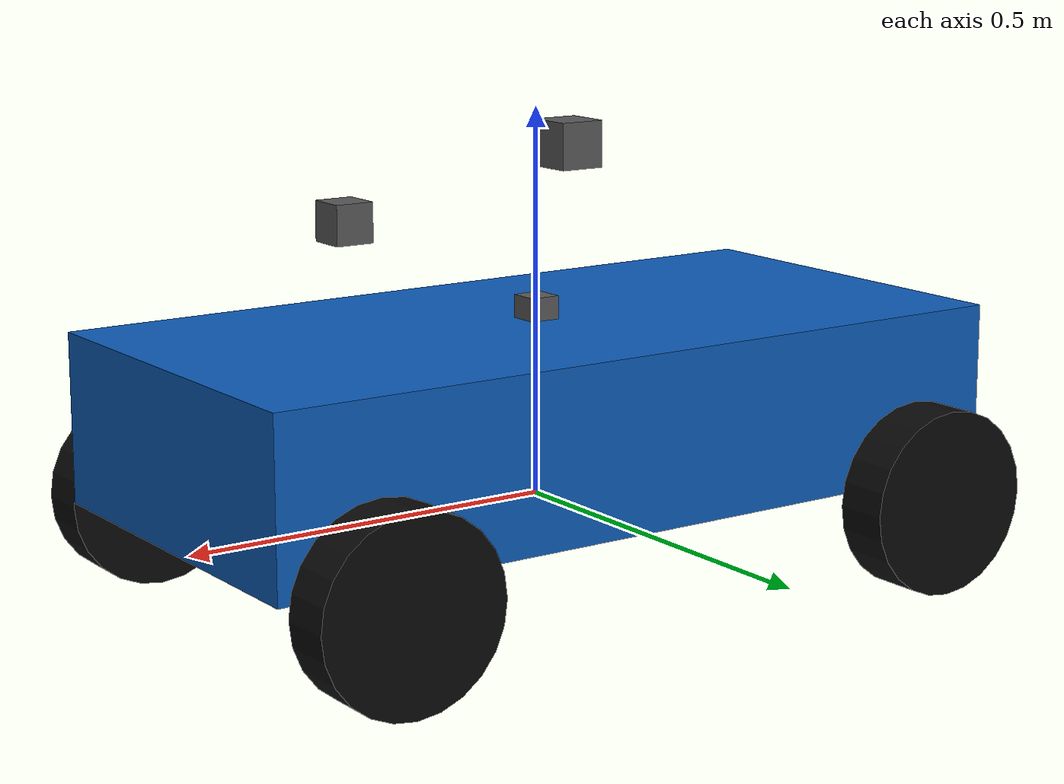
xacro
<?xml version="1.0"?>
<!-- Модель Ackermann-робота: SI, оси REP-103. Размеры взяты из
     models/course_ackermann/model.sdf (только геометрия, без Gazebo-плагинов). -->
<robot name="course_ackermann" xmlns:xacro="http://www.ros.org/wiki/xacro">

  <!-- База и колёса: метры, килограммы. -->
  <xacro:property name="base_length" value="1.05"/>
  <xacro:property name="base_width" value="0.52"/>
  <xacro:property name="base_height" value="0.22"/>
  <xacro:property name="base_clearance" value="0.12"/>
  <xacro:property name="track" value="0.62"/>
  <xacro:property name="wheelbase" value="0.80"/>
  <xacro:property name="wheel_radius" value="0.12"/>
  <xacro:property name="wheel_width" value="0.07"/>

  <!-- Сенсоры: смещения от base_link, метры. -->
  <xacro:property name="camera_xyz" value="0.28 0.0 0.38"/>
  <xacro:property name="lidar_xyz" value="-0.05 0.0 0.45"/>
  <xacro:property name="imu_xyz" value="0.0 0.0 0.24"/>

  <!-- Массы: килограммы. -->
  <xacro:property name="base_mass" value="12.0"/>
  <xacro:property name="wheel_mass" value="0.8"/>
  <xacro:property name="sensor_mass" value="0.0333"/>

  <xacro:macro name="box_inertial" params="mass x y z">
    <inertial>
      <mass value="${mass}"/>
      <inertia ixx="${mass * (y * y + z * z) / 12.0}" ixy="0.0" ixz="0.0"
               iyy="${mass * (x * x + z * z) / 12.0}" iyz="0.0"
               izz="${mass * (x * x + y * y) / 12.0}"/>
    </inertial>
  </xacro:macro>

  <link name="base_link">
    <xacro:box_inertial mass="${base_mass}" x="${base_length}"
                        y="${base_width}" z="${base_height}"/>
    <visual>
      <origin xyz="0 0 ${base_clearance}" rpy="0 0 0"/>
      <geometry>
        <box size="${base_length} ${base_width} ${base_height}"/>
      </geometry>
      <material name="body_blue">
        <color rgba="0.05 0.36 0.72 1.0"/>
      </material>
    </visual>
    <collision>
      <origin xyz="0 0 ${base_clearance}" rpy="0 0 0"/>
      <geometry>
        <box size="${base_length} ${base_width} ${base_height}"/>
      </geometry>
    </collision>
  </link>

  <xacro:macro name="wheel" params="name x y">
    <link name="${name}">
      <inertial>
        <mass value="${wheel_mass}"/>
        <inertia ixx="${wheel_mass * (3 * wheel_radius * wheel_radius + wheel_width * wheel_width) / 12.0}"
                 ixy="0.0" ixz="0.0"
                 iyy="${wheel_mass * wheel_radius * wheel_radius / 2.0}" iyz="0.0"
                 izz="${wheel_mass * (3 * wheel_radius * wheel_radius + wheel_width * wheel_width) / 12.0}"/>
      </inertial>
      <visual>
        <origin xyz="0 0 0" rpy="1.5707963267948966 0 0"/>
        <geometry>
          <cylinder radius="${wheel_radius}" length="${wheel_width}"/>
        </geometry>
        <material name="wheel_black">
          <color rgba="0.04 0.04 0.04 1.0"/>
        </material>
      </visual>
      <collision>
        <origin xyz="0 0 0" rpy="1.5707963267948966 0 0"/>
        <geometry>
          <cylinder radius="${wheel_radius}" length="${wheel_width}"/>
        </geometry>
      </collision>
    </link>
    <joint name="${name}_joint" type="continuous">
      <parent link="base_link"/>
      <child link="${name}"/>
      <origin xyz="${x} ${y} 0.0" rpy="0 0 0"/>
      <axis xyz="0 1 0"/>
    </joint>
  </xacro:macro>

  <xacro:wheel name="front_left_wheel" x="${wheelbase / 2.0}" y="${track / 2.0}"/>
  <xacro:wheel name="front_right_wheel" x="${wheelbase / 2.0}" y="${-track / 2.0}"/>
  <xacro:wheel name="rear_left_wheel" x="${-wheelbase / 2.0}" y="${track / 2.0}"/>
  <xacro:wheel name="rear_right_wheel" x="${-wheelbase / 2.0}" y="${-track / 2.0}"/>

  <xacro:macro name="sensor" params="name xyz size parent:='base_link'">
    <link name="${name}">
      <xacro:box_inertial mass="${sensor_mass}" x="${size}" y="${size}" z="${size}"/>
      <visual>
        <origin xyz="0 0 0" rpy="0 0 0"/>
        <geometry>
          <box size="${size} ${size} ${size}"/>
        </geometry>
        <material name="sensor_gray">
          <color rgba="0.35 0.35 0.35 1.0"/>
        </material>
      </visual>
      <collision>
        <origin xyz="0 0 0" rpy="0 0 0"/>
        <geometry>
          <box size="${size} ${size} ${size}"/>
        </geometry>
      </collision>
    </link>
    <joint name="${name}_joint" type="fixed">
      <parent link="${parent}"/>
      <child link="${name}"/>
      <origin xyz="${xyz}" rpy="0 0 0"/>
    </joint>
  </xacro:macro>

  <xacro:sensor name="camera_link" xyz="${camera_xyz}" size="0.05"/>
  <xacro:sensor name="lidar_link" xyz="${lidar_xyz}" size="0.06"/>
  <xacro:sensor name="imu_link" xyz="${imu_xyz}" size="0.04"/>

</robot>
